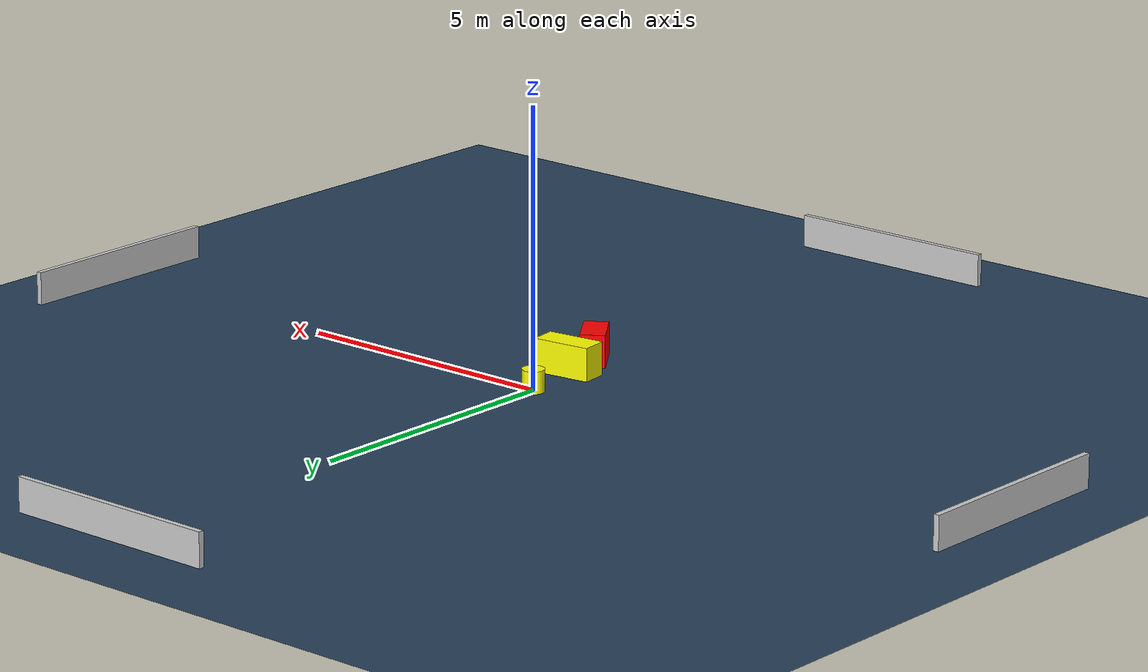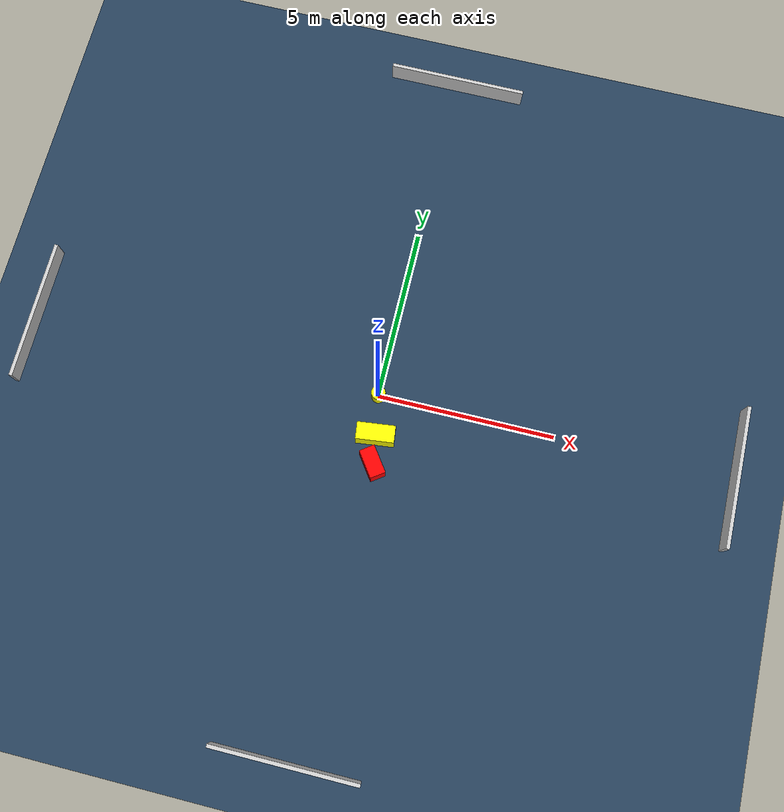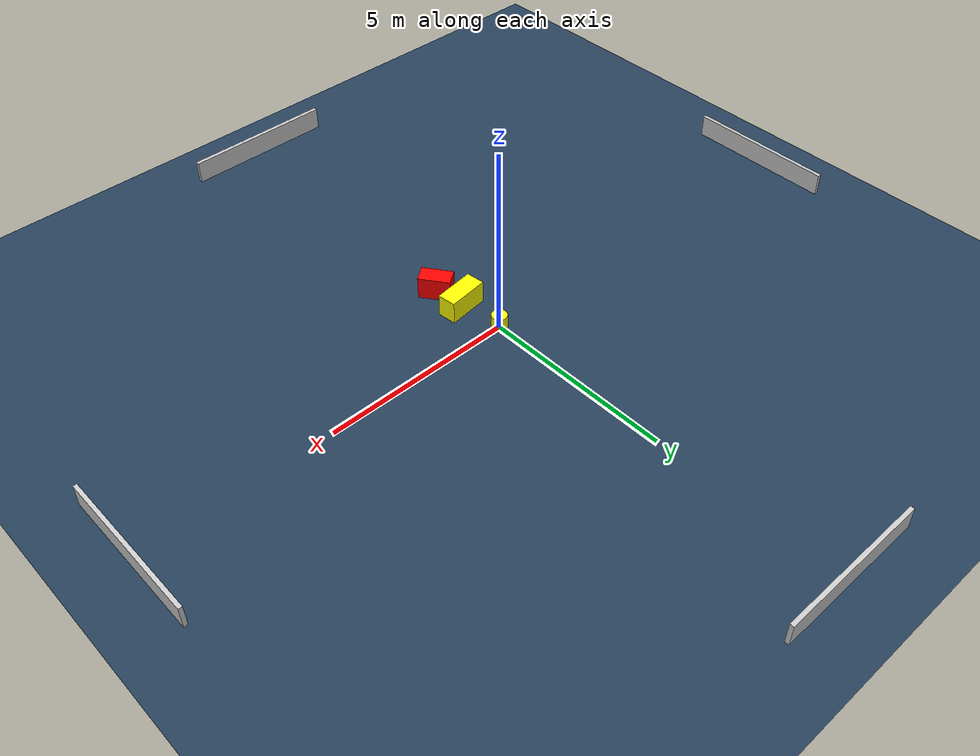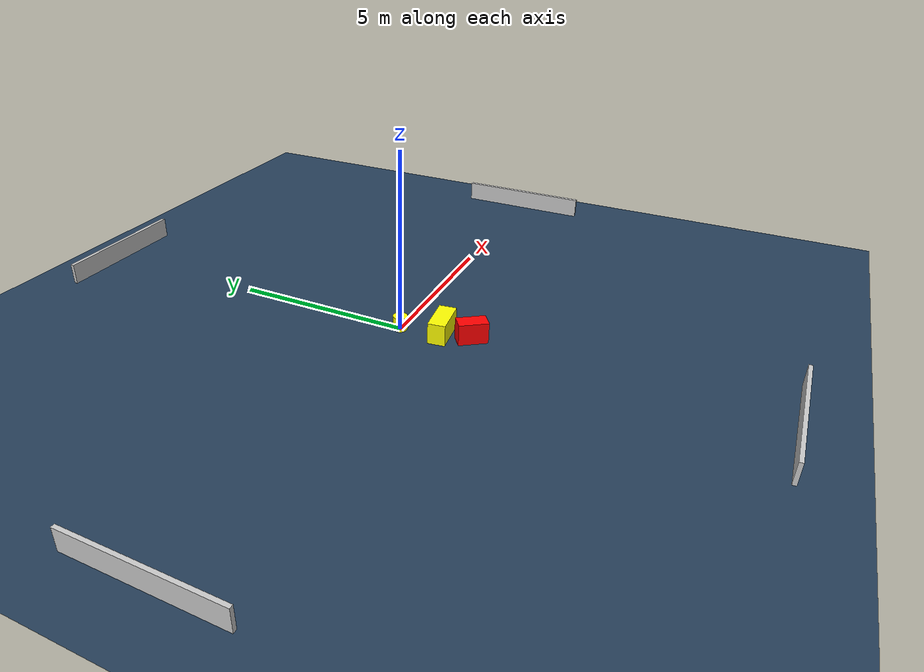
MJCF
<?xml version="1.0" ?>
<mujoco model="generated_environment">
  <option timestep="0.01" integrator="RK4" cone="elliptic"/>
  <default>
    <geom density="1"/>
  </default>
  <asset>
    <texture builtin="gradient" height="3072" name="skybox" rgb1="0.3 0.5 0.7" rgb2="0 0 0" type="skybox" width="512"/>
    <texture builtin="checker" height="300" name="groundplane" rgb1="0.2 0.3 0.4" rgb2="0.1 0.2 0.3" type="2d" width="300"/>
    <material name="groundplane" reflectance="0.2" texrepeat="5 5" texture="groundplane"/>
  </asset>
  <worldbody>
    <light dir="0 0 -1" directional="true" pos="0 0 1.5"/>
    <geom condim="3" friction="0.5 0.005 0.001" material="groundplane" name="floor" pos="0 0 0" size="0 0 0.05" type="plane"/>
    <body name="walls">
      <geom name="wall_1" condim="4" pos="-10.0 0.0 0.3" rgba="0.800000011920929 0.800000011920929 0.800000011920929 1.0" size="0.05 2.0 0.3" type="box"/>
      <geom name="wall_2" condim="4" pos="10.0 0.0 0.3" rgba="0.800000011920929 0.800000011920929 0.800000011920929 1.0" size="0.05 2.0 0.3" type="box"/>
      <geom name="wall_3" condim="4" pos="0.0 -10.0 0.3" rgba="0.800000011920929 0.800000011920929 0.800000011920929 1.0" size="2.0 0.05 0.3" type="box"/>
      <geom name="wall_4" condim="4" pos="0.0 10.0 0.3" rgba="0.800000011920929 0.800000011920929 0.800000011920929 1.0" size="2.0 0.05 0.3" type="box"/>
    </body>
    <body name="robot">
      <joint name="joint_x" type="slide" pos="0 0 0" axis="1 0 0"/>
      <joint name="joint_y" type="slide" pos="0 0 0" axis="0 1 0"/>
      <geom name="robot" type="cylinder" pos="0.0 0.0 0.2" size="0.2 0.2 0.0" mass="5.0" friction="1.0 0.005 0.0001" condim="4" rgba="1.0 1.0 0.0 1.0"/>
    </body>
    <body name="obstacle_1_movable">
      <geom name="obstacle_1_movable" condim="4" pos="0.19950946345916046 -1.149552940795639 0.3" euler="0 0 96.81517794825194" friction="0.0 0.005 0.001" rgba="1.0 1.0 0.0 1.0" size="0.24174364711892793 0.5333490688705163 0.3" type="box" mass="0.1"/>
      <joint type="free"/>
    </body>
    <body name="obstacle_2_static">
      <geom name="obstacle_2_static" condim="4" pos="0.3097015918468369 -1.9588811480121926 0.3" euler="0 0 35.68513038633274" friction="0.0 0.005 0.001" rgba="1.0 0.0 0.0 1.0" size="0.22216927675433915 0.40851394071103003 0.3" type="box"/>
    </body>
  </worldbody>
  <actuator>
    <motor name="actuator_x" joint="joint_x" gear="1" ctrlrange="-1 1"/>
    <motor name="actuator_y" joint="joint_y" gear="1" ctrlrange="-1 1"/>
  </actuator>
</mujoco>
